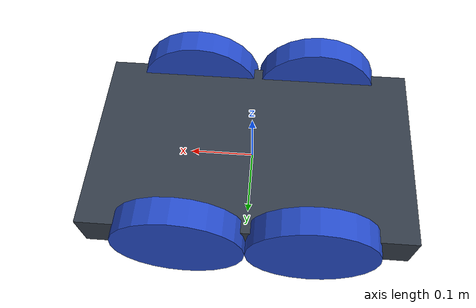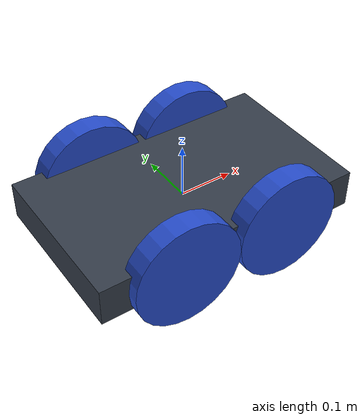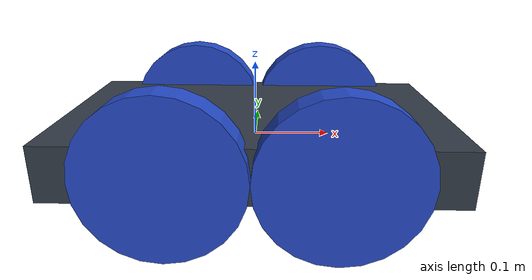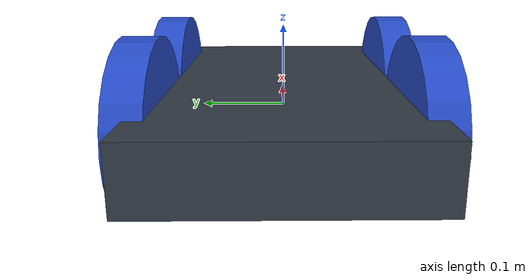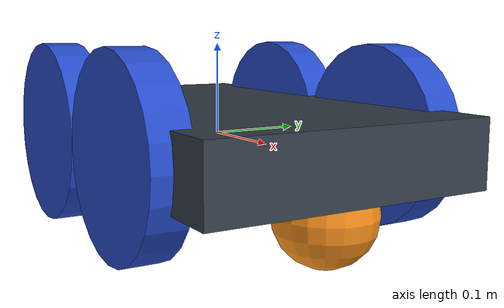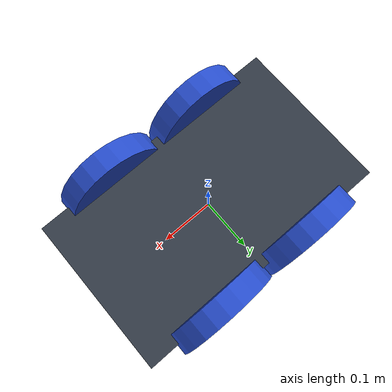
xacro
<?xml version="1.0" ?>

<robot name="mybot" xmlns:xacro="https://www.ros.org/wiki/xacro" >

<material name="black">
<color rgba="0.0 0.0 0.0 1.0"/>
</material>
<material name="blue">
<color rgba="0.203125 0.23828125 0.28515625 1.0"/>
</material>
<material name="green">
<color rgba="0.0 0.8 0.0 1.0"/>
</material>
<material name="grey">
<color rgba="0.2 0.2 0.2 1.0"/>
</material>
<material name="orange">
<color rgba="1.0 0.423529411765 0.0392156862745 1.0"/>

</material>
<material name="brown">
<color rgba="0.870588235294 0.811764705882 0.764705882353 1.0"/>
</material>
<material name="red">
<color rgba="0.80078125 0.12890625 0.1328125 1.0"/>
</material>
<material name="white">
<color rgba="1.0 1.0 1.0 1.0"/>
</material>

<gazebo reference="link_chassis">
<material>Gazebo/Orange</material>
</gazebo>
<gazebo reference="link_left_wheel">
<material>Gazebo/Blue</material>
</gazebo>
<gazebo reference="link_right_wheel">
<material>Gazebo/Blue</material>
</gazebo>
<gazebo reference="link_front_wheel1">
<material>Gazebo/Blue</material>
</gazebo>
<gazebo reference="link_front_wheel2">
<material>Gazebo/Blue</material>
</gazebo>

<gazebo>
<plugin filename="libgazebo_ros_diff_drive.so" name="differential_drive_controller">

<alwaysOn>true</alwaysOn>
<updateRate>20</updateRate>
<leftJoint>joint_left_wheel</leftJoint>
<rightJoint>joint_right_wheel</rightJoint>
<leftJoint>joint_front_wheel1</leftJoint>
<rightJoint>joint_front_wheel2</rightJoint>
<wheelSeparation>0.4</wheelSeparation>
<wheelDiameter>0.2</wheelDiameter>
<torque>0.1</torque>
<commandTopic>cmd_vel</commandTopic>
<odometryTopic>odom</odometryTopic>
<odometryFrame>odom</odometryFrame>
<robotBaseFrame>link_chassis</robotBaseFrame>
</plugin>
</gazebo>

<link name="link_chassis">
<!-- pose and inertial -->
<pose>0 0 0.1 0 0 0</pose>

<inertial>
<mass value="5"/>
<origin rpy="0 0 0" xyz="0 0 0.1"/>
<inertia ixx="0.0395416666667" ixy="0" ixz="0" iyy="0.106208333333" iyz="0"
izz="0.106208333333"/>
</inertial>

<!---Body-->
<collision name="collision_chassis">
<geometry>
<box size="0.5 0.3 0.07"/>
</geometry>
</collision>

<visual>
<origin rpy="0 0 0" xyz="0 0 0"/>
<geometry>
<box size="0.5 0.3 0.07"/>
</geometry>
<material name="blue"/>
</visual>

<!-- caster front -->
<collision name="caster_front_collision">
<origin rpy=" 0 0 0" xyz="0.35 0 -0.05"/>
<geometry>
<sphere radius="0.05"/>
</geometry>
<surface>
<friction>
<ode>
<mu>0</mu>

<mu2>0</mu2>
<slip1>1.0</slip1>
<slip2>1.0</slip2>
</ode>
</friction>
</surface>
</collision>

<visual name="caster_front_visual">
<origin rpy=" 0 0 0" xyz="0.2 0 -0.05"/>
<geometry>
<sphere radius="0.05"/>
</geometry>
</visual>

</link>

<!-- Create wheel right -->

<link name="link_right_wheel">
<inertial>
<mass value="0.2"/>
<origin rpy="0 1.5707 1.5707" xyz="0 0 0"/>

<inertia ixx="0.00052666666" ixy="0" ixz="0" iyy="0.00052666666" iyz="0" izz="0.001"/>
</inertial>

<collision name="link_right_wheel_collision">
<origin rpy="0 1.5707 1.5707" xyz="0 0 0" />
<geometry>
<cylinder length="0.04" radius="0.1"/>
</geometry>
</collision>

<visual name="link_right_wheel_visual">
<origin rpy="0 1.5707 1.5707" xyz="0 0 0"/>
<geometry>
<cylinder length="0.04" radius="0.1"/>
</geometry>
</visual>

</link>
<!-- Joint for right wheel -->
<joint name="joint_right_wheel" type="continuous">
<origin rpy="0 0 0" xyz="-0.1 0.15 0"/>
<child link="link_right_wheel" />
<parent link="link_chassis"/>
<axis rpy="0 0 0" xyz="0 1 0"/>
<limit effort="10000" velocity="1000"/>
<joint_properties damping="1.0" friction="1.0" />

</joint>

<!-- Left Wheel link -->

<link name="link_left_wheel">
<inertial>
<mass value="0.2"/>
<origin rpy="0 1.5707 1.5707" xyz="0 0 0"/>
<inertia ixx="0.00052666666" ixy="0" ixz="0" iyy="0.00052666666" iyz="0" izz="0.001"/>
</inertial>

<collision name="link_left_wheel_collision">
<origin rpy="0 1.5707 1.5707" xyz="0 0 0" />
<geometry>
<cylinder length="0.04" radius="0.1"/>
</geometry>
</collision>

<visual name="link_left_wheel_visual">
<origin rpy="0 1.5707 1.5707" xyz="0 0 0"/>
<geometry>
<cylinder length="0.04" radius="0.1"/>
</geometry>
</visual>

</link>

<!-- Joint for left wheel -->
<joint name="joint_left_wheel" type="continuous">
<origin rpy="0 0 0" xyz="-0.1 -0.15 0"/>
<child link="link_left_wheel" />
<parent link="link_chassis"/>
<axis rpy="0 0 0" xyz="0 1 0"/>
<limit effort="10000" velocity="1000"/>
<joint_properties damping="1.0" friction="1.0" />
</joint>

<!-- Create wheel front right -->

<link name="link_front_wheel1">
<inertial>
<mass value="0.2"/>
<origin rpy="0 1.5707 1.5707" xyz="0 0 0"/>

<inertia ixx="0.00052666666" ixy="0" ixz="0" iyy="0.00052666666" iyz="0" izz="0.001"/>
</inertial>

<collision name="link_front_wheel1_collision">
<origin rpy="0 1.5707 1.5707" xyz="0 0 0" />
<geometry>
<cylinder length="0.04" radius="0.1"/>
</geometry>
</collision>

<visual name="link_front_wheel1_visual">
<origin rpy="0 1.5707 1.5707" xyz="0 0 0"/>
<geometry>
<cylinder length="0.04" radius="0.1"/>
</geometry>
</visual>

</link>
<!-- Joint for right wheel -->
<joint name="joint_front_wheel1" type="continuous">
<origin rpy="0 0 0" xyz="0.1 0.15 0"/>
<child link="link_front_wheel1" />
<parent link="link_chassis"/>
<axis rpy="0 0 0" xyz="0 1 0"/>
<limit effort="10000" velocity="1000"/>
<joint_properties damping="1.0" friction="1.0" />

</joint>

<!-- Front Left Wheel link -->

<link name="link_front_wheel2">
<inertial>
<mass value="0.2"/>
<origin rpy="0 1.5707 1.5707" xyz="0 0 0"/>
<inertia ixx="0.00052666666" ixy="0" ixz="0" iyy="0.00052666666" iyz="0" izz="0.001"/>
</inertial>

<collision name="link_front_wheel2_collision">
<origin rpy="0 1.5707 1.5707" xyz="0 0 0" />
<geometry>
<cylinder length="0.04" radius="0.1"/>
</geometry>
</collision>

<visual name="link_front_wheel2_visual">
<origin rpy="0 1.5707 1.5707" xyz="0 0 0"/>
<geometry>
<cylinder length="0.04" radius="0.1"/>
</geometry>
</visual>

</link>

<!-- Joint for left wheel -->
<joint name="joint_front_wheel2" type="continuous">
<origin rpy="0 0 0" xyz="0.1 -0.15 0"/>
<child link="link_front_wheel2" />
<parent link="link_chassis"/>
<axis rpy="0 0 0" xyz="0 1 0"/>
<limit effort="10000" velocity="1000"/>
<joint_properties damping="1.0" friction="1.0" />
</joint>

</robot>
